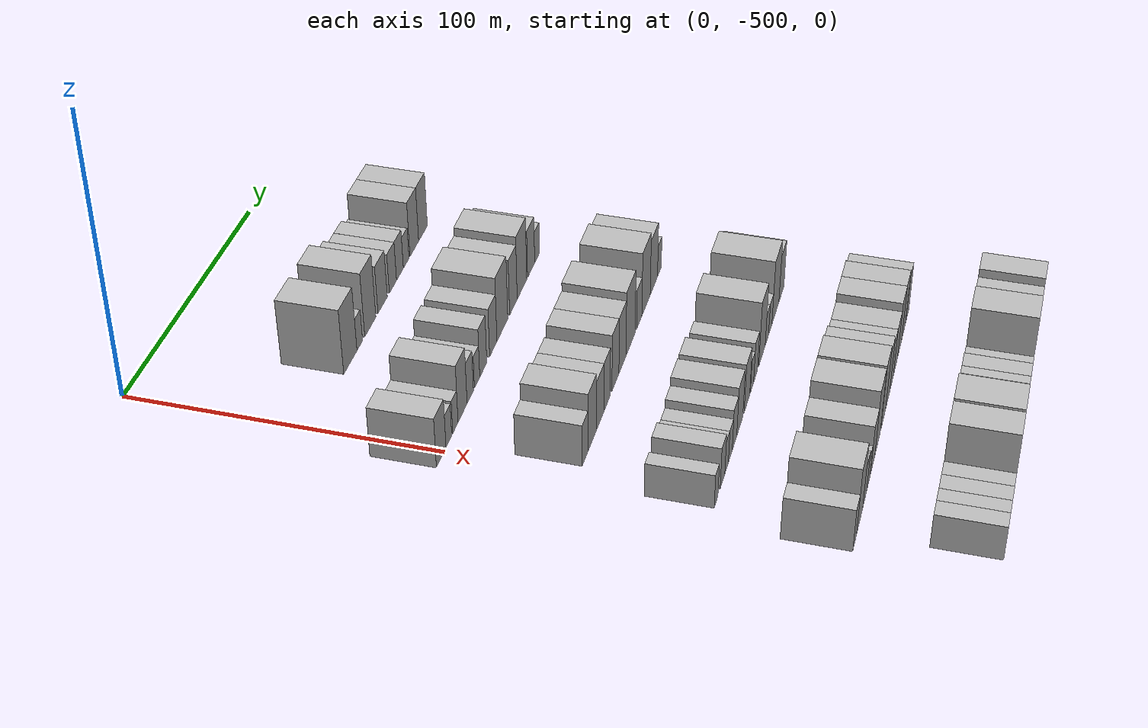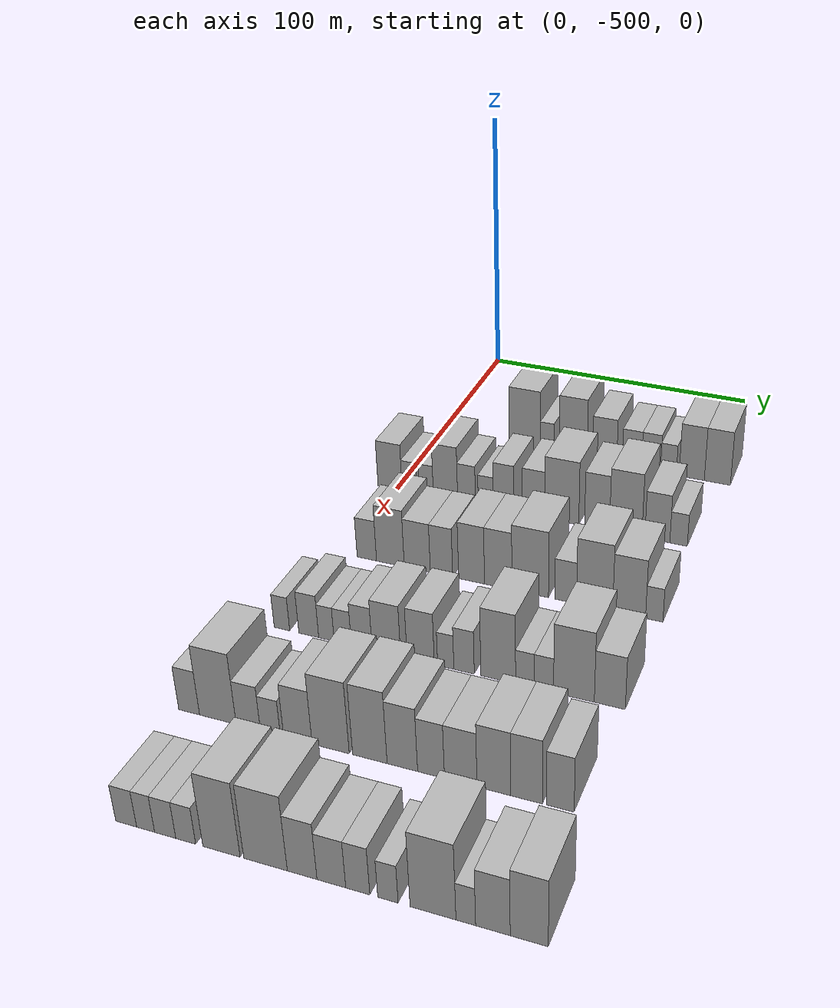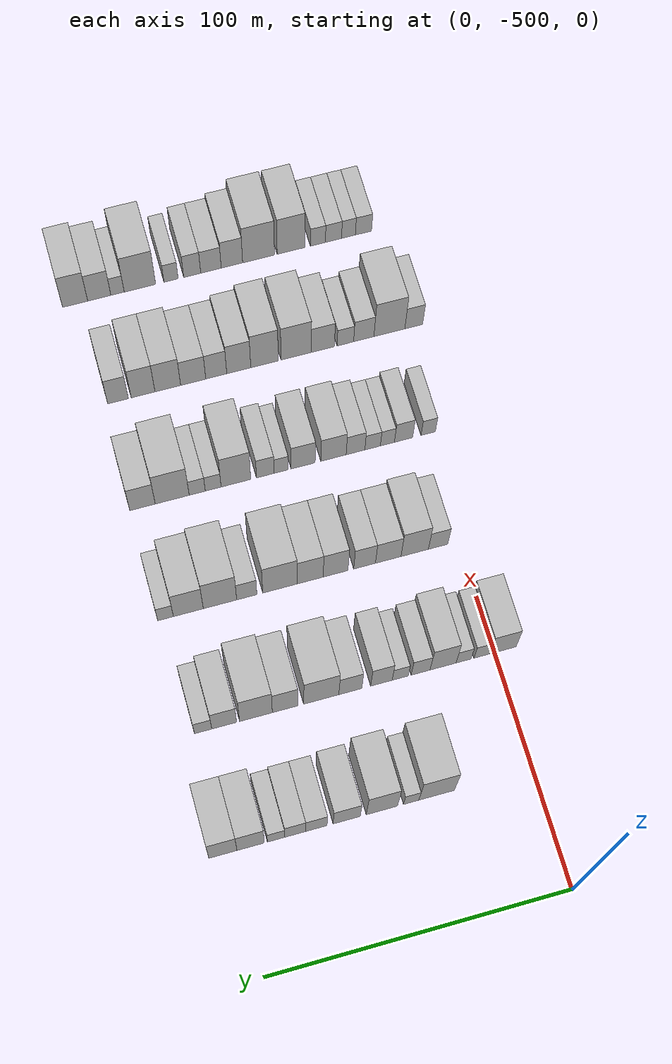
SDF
<sdf version="1.6">
 <world name="default">
  <model name="building_13">
   <static>1</static>
   <pose>50.0000 -467.8218 0 0.000000 0.000000 0.000000</pose>
   <link name="link">
    <pose>0 0 12.00 0 0 0</pose>
    <collision name="collision"><geometry><box><size>20.0000 11.8208 24.0000</size></box></geometry></collision>
    <visual name="visual">
     <cast_shadows>0</cast_shadows>
     <geometry><box><size>20.0000 11.8208 24.0000</size></box></geometry>
     <material>
      <script>
       <uri>model://HANNAS_wall/materials/scripts</uri>
       <uri>model://HANNAS_wall/materials/textures</uri>
       <name>vrc/HANNAS_wall</name>
      </script>
     </material>
    </visual>
   </link>
  </model>
  <model name="building_14">
   <static>1</static>
   <pose>50.0000 -459.3710 0 0.000000 0.000000 0.000000</pose>
   <link name="link">
    <pose>0 0 6.00 0 0 0</pose>
    <collision name="collision"><geometry><box><size>20.0000 5.0807 12.0000</size></box></geometry></collision>
    <visual name="visual">
     <cast_shadows>0</cast_shadows>
     <geometry><box><size>20.0000 5.0807 12.0000</size></box></geometry>
     <material>
      <script>
       <uri>model://HANNAS_wall/materials/scripts</uri>
       <uri>model://HANNAS_wall/materials/textures</uri>
       <name>vrc/HANNAS_wall</name>
      </script>
     </material>
    </visual>
   </link>
  </model>
  <model name="building_15">
   <static>1</static>
   <pose>50.0000 -449.6643 0 0.000000 0.000000 0.000000</pose>
   <link name="link">
    <pose>0 0 12.00 0 0 0</pose>
    <collision name="collision"><geometry><box><size>20.0000 10.3328 24.0000</size></box></geometry></collision>
    <visual name="visual">
     <cast_shadows>0</cast_shadows>
     <geometry><box><size>20.0000 10.3328 24.0000</size></box></geometry>
     <material>
      <script>
       <uri>model://HANNAS_wall/materials/scripts</uri>
       <uri>model://HANNAS_wall/materials/textures</uri>
       <name>vrc/HANNAS_wall</name>
      </script>
     </material>
    </visual>
   </link>
  </model>
  <model name="building_16">
   <static>1</static>
   <pose>50.0000 -438.0300 0 0.000000 0.000000 0.000000</pose>
   <link name="link">
    <pose>0 0 9.00 0 0 0</pose>
    <collision name="collision"><geometry><box><size>20.0000 8.9358 18.0000</size></box></geometry></collision>
    <visual name="visual">
     <cast_shadows>0</cast_shadows>
     <geometry><box><size>20.0000 8.9358 18.0000</size></box></geometry>
     <material>
      <script>
       <uri>model://HANNAS_wall/materials/scripts</uri>
       <uri>model://HANNAS_wall/materials/textures</uri>
       <name>vrc/HANNAS_wall</name>
      </script>
     </material>
    </visual>
   </link>
  </model>
  <model name="building_17">
   <static>1</static>
   <pose>50.0000 -428.0484 0 0.000000 0.000000 0.000000</pose>
   <link name="link">
    <pose>0 0 7.50 0 0 0</pose>
    <collision name="collision"><geometry><box><size>20.0000 7.0274 15.0000</size></box></geometry></collision>
    <visual name="visual">
     <cast_shadows>0</cast_shadows>
     <geometry><box><size>20.0000 7.0274 15.0000</size></box></geometry>
     <material>
      <script>
       <uri>model://HANNAS_wall/materials/scripts</uri>
       <uri>model://HANNAS_wall/materials/textures</uri>
       <name>vrc/HANNAS_wall</name>
      </script>
     </material>
    </visual>
   </link>
  </model>
  <model name="building_18">
   <static>1</static>
   <pose>50.0000 -421.1219 0 0.000000 0.000000 0.000000</pose>
   <link name="link">
    <pose>0 0 7.50 0 0 0</pose>
    <collision name="collision"><geometry><box><size>20.0000 6.8255 15.0000</size></box></geometry></collision>
    <visual name="visual">
     <cast_shadows>0</cast_shadows>
     <geometry><box><size>20.0000 6.8255 15.0000</size></box></geometry>
     <material>
      <script>
       <uri>model://HANNAS_wall/materials/scripts</uri>
       <uri>model://HANNAS_wall/materials/textures</uri>
       <name>vrc/HANNAS_wall</name>
      </script>
     </material>
    </visual>
   </link>
  </model>
  <model name="building_19">
   <static>1</static>
   <pose>50.0000 -414.8773 0 0.000000 0.000000 0.000000</pose>
   <link name="link">
    <pose>0 0 6.00 0 0 0</pose>
    <collision name="collision"><geometry><box><size>20.0000 5.6638 12.0000</size></box></geometry></collision>
    <visual name="visual">
     <cast_shadows>0</cast_shadows>
     <geometry><box><size>20.0000 5.6638 12.0000</size></box></geometry>
     <material>
      <script>
       <uri>model://HANNAS_wall/materials/scripts</uri>
       <uri>model://HANNAS_wall/materials/textures</uri>
       <name>vrc/HANNAS_wall</name>
      </script>
     </material>
    </visual>
   </link>
  </model>
  <model name="building_20">
   <static>1</static>
   <pose>50.0000 -406.5833 0 0.000000 0.000000 0.000000</pose>
   <link name="link">
    <pose>0 0 10.50 0 0 0</pose>
    <collision name="collision"><geometry><box><size>20.0000 8.9241 21.0000</size></box></geometry></collision>
    <visual name="visual">
     <cast_shadows>0</cast_shadows>
     <geometry><box><size>20.0000 8.9241 21.0000</size></box></geometry>
     <material>
      <script>
       <uri>model://HANNAS_wall/materials/scripts</uri>
       <uri>model://HANNAS_wall/materials/textures</uri>
       <name>vrc/HANNAS_wall</name>
      </script>
     </material>
    </visual>
   </link>
  </model>
  <model name="building_21">
   <static>1</static>
   <pose>50.0000 -397.5467 0 0.000000 0.000000 0.000000</pose>
   <link name="link">
    <pose>0 0 10.50 0 0 0</pose>
    <collision name="collision"><geometry><box><size>20.0000 9.1492 21.0000</size></box></geometry></collision>
    <visual name="visual">
     <cast_shadows>0</cast_shadows>
     <geometry><box><size>20.0000 9.1492 21.0000</size></box></geometry>
     <material>
      <script>
       <uri>model://HANNAS_wall/materials/scripts</uri>
       <uri>model://HANNAS_wall/materials/textures</uri>
       <name>vrc/HANNAS_wall</name>
      </script>
     </material>
    </visual>
   </link>
  </model>
  <model name="building_155">
   <static>1</static>
   <pose>90.0000 -502.7356 0 0.000000 0.000000 0.000000</pose>
   <link name="link">
    <pose>0 0 9.00 0 0 0</pose>
    <collision name="collision"><geometry><box><size>20.0000 8.9766 18.0000</size></box></geometry></collision>
    <visual name="visual">
     <cast_shadows>0</cast_shadows>
     <geometry><box><size>20.0000 8.9766 18.0000</size></box></geometry>
     <material>
      <script>
       <uri>model://HANNAS_wall/materials/scripts</uri>
       <uri>model://HANNAS_wall/materials/textures</uri>
       <name>vrc/HANNAS_wall</name>
      </script>
     </material>
    </visual>
   </link>
  </model>
  <model name="building_156">
   <static>1</static>
   <pose>90.0000 -495.5175 0 0.000000 0.000000 0.000000</pose>
   <link name="link">
    <pose>0 0 6.00 0 0 0</pose>
    <collision name="collision"><geometry><box><size>20.0000 5.4596 12.0000</size></box></geometry></collision>
    <visual name="visual">
     <cast_shadows>0</cast_shadows>
     <geometry><box><size>20.0000 5.4596 12.0000</size></box></geometry>
     <material>
      <script>
       <uri>model://HANNAS_wall/materials/scripts</uri>
       <uri>model://HANNAS_wall/materials/textures</uri>
       <name>vrc/HANNAS_wall</name>
      </script>
     </material>
    </visual>
   </link>
  </model>
  <model name="building_157">
   <static>1</static>
   <pose>90.0000 -489.2278 0 0.000000 0.000000 0.000000</pose>
   <link name="link">
    <pose>0 0 6.00 0 0 0</pose>
    <collision name="collision"><geometry><box><size>20.0000 5.1197 12.0000</size></box></geometry></collision>
    <visual name="visual">
     <cast_shadows>0</cast_shadows>
     <geometry><box><size>20.0000 5.1197 12.0000</size></box></geometry>
     <material>
      <script>
       <uri>model://HANNAS_wall/materials/scripts</uri>
       <uri>model://HANNAS_wall/materials/textures</uri>
       <name>vrc/HANNAS_wall</name>
      </script>
     </material>
    </visual>
   </link>
  </model>
  <model name="building_158">
   <static>1</static>
   <pose>90.0000 -482.2254 0 0.000000 0.000000 0.000000</pose>
   <link name="link">
    <pose>0 0 10.50 0 0 0</pose>
    <collision name="collision"><geometry><box><size>20.0000 8.8852 21.0000</size></box></geometry></collision>
    <visual name="visual">
     <cast_shadows>0</cast_shadows>
     <geometry><box><size>20.0000 8.8852 21.0000</size></box></geometry>
     <material>
      <script>
       <uri>model://HANNAS_wall/materials/scripts</uri>
       <uri>model://HANNAS_wall/materials/textures</uri>
       <name>vrc/HANNAS_wall</name>
      </script>
     </material>
    </visual>
   </link>
  </model>
  <model name="building_159">
   <static>1</static>
   <pose>90.0000 -474.5796 0 0.000000 0.000000 0.000000</pose>
   <link name="link">
    <pose>0 0 7.50 0 0 0</pose>
    <collision name="collision"><geometry><box><size>20.0000 6.4064 15.0000</size></box></geometry></collision>
    <visual name="visual">
     <cast_shadows>0</cast_shadows>
     <geometry><box><size>20.0000 6.4064 15.0000</size></box></geometry>
     <material>
      <script>
       <uri>model://HANNAS_wall/materials/scripts</uri>
       <uri>model://HANNAS_wall/materials/textures</uri>
       <name>vrc/HANNAS_wall</name>
      </script>
     </material>
    </visual>
   </link>
  </model>
  <model name="building_160">
   <static>1</static>
   <pose>90.0000 -467.6576 0 0.000000 0.000000 0.000000</pose>
   <link name="link">
    <pose>0 0 6.00 0 0 0</pose>
    <collision name="collision"><geometry><box><size>20.0000 5.4376 12.0000</size></box></geometry></collision>
    <visual name="visual">
     <cast_shadows>0</cast_shadows>
     <geometry><box><size>20.0000 5.4376 12.0000</size></box></geometry>
     <material>
      <script>
       <uri>model://HANNAS_wall/materials/scripts</uri>
       <uri>model://HANNAS_wall/materials/textures</uri>
       <name>vrc/HANNAS_wall</name>
      </script>
     </material>
    </visual>
   </link>
  </model>
  <model name="building_161">
   <static>1</static>
   <pose>90.0000 -461.2988 0 0.000000 0.000000 0.000000</pose>
   <link name="link">
    <pose>0 0 9.00 0 0 0</pose>
    <collision name="collision"><geometry><box><size>20.0000 7.2801 18.0000</size></box></geometry></collision>
    <visual name="visual">
     <cast_shadows>0</cast_shadows>
     <geometry><box><size>20.0000 7.2801 18.0000</size></box></geometry>
     <material>
      <script>
       <uri>model://HANNAS_wall/materials/scripts</uri>
       <uri>model://HANNAS_wall/materials/textures</uri>
       <name>vrc/HANNAS_wall</name>
      </script>
     </material>
    </visual>
   </link>
  </model>
  <model name="building_162">
   <static>1</static>
   <pose>90.0000 -450.7785 0 0.000000 0.000000 0.000000</pose>
   <link name="link">
    <pose>0 0 9.00 0 0 0</pose>
    <collision name="collision"><geometry><box><size>20.0000 7.7603 18.0000</size></box></geometry></collision>
    <visual name="visual">
     <cast_shadows>0</cast_shadows>
     <geometry><box><size>20.0000 7.7603 18.0000</size></box></geometry>
     <material>
      <script>
       <uri>model://HANNAS_wall/materials/scripts</uri>
       <uri>model://HANNAS_wall/materials/textures</uri>
       <name>vrc/HANNAS_wall</name>
      </script>
     </material>
    </visual>
   </link>
  </model>
  <model name="building_163">
   <static>1</static>
   <pose>90.0000 -440.9800 0 0.000000 0.000000 0.000000</pose>
   <link name="link">
    <pose>0 0 12.00 0 0 0</pose>
    <collision name="collision"><geometry><box><size>20.0000 11.8367 24.0000</size></box></geometry></collision>
    <visual name="visual">
     <cast_shadows>0</cast_shadows>
     <geometry><box><size>20.0000 11.8367 24.0000</size></box></geometry>
     <material>
      <script>
       <uri>model://HANNAS_wall/materials/scripts</uri>
       <uri>model://HANNAS_wall/materials/textures</uri>
       <name>vrc/HANNAS_wall</name>
      </script>
     </material>
    </visual>
   </link>
  </model>
  <model name="building_164">
   <static>1</static>
   <pose>90.0000 -428.8132 0 0.000000 0.000000 0.000000</pose>
   <link name="link">
    <pose>0 0 10.50 0 0 0</pose>
    <collision name="collision"><geometry><box><size>20.0000 8.4970 21.0000</size></box></geometry></collision>
    <visual name="visual">
     <cast_shadows>0</cast_shadows>
     <geometry><box><size>20.0000 8.4970 21.0000</size></box></geometry>
     <material>
      <script>
       <uri>model://HANNAS_wall/materials/scripts</uri>
       <uri>model://HANNAS_wall/materials/textures</uri>
       <name>vrc/HANNAS_wall</name>
      </script>
     </material>
    </visual>
   </link>
  </model>
  <model name="building_165">
   <static>1</static>
   <pose>90.0000 -419.1036 0 0.000000 0.000000 0.000000</pose>
   <link name="link">
    <pose>0 0 12.00 0 0 0</pose>
    <collision name="collision"><geometry><box><size>20.0000 10.9220 24.0000</size></box></geometry></collision>
    <visual name="visual">
     <cast_shadows>0</cast_shadows>
     <geometry><box><size>20.0000 10.9220 24.0000</size></box></geometry>
     <material>
      <script>
       <uri>model://HANNAS_wall/materials/scripts</uri>
       <uri>model://HANNAS_wall/materials/textures</uri>
       <name>vrc/HANNAS_wall</name>
      </script>
     </material>
    </visual>
   </link>
  </model>
  <model name="building_166">
   <static>1</static>
   <pose>90.0000 -408.4933 0 0.000000 0.000000 0.000000</pose>
   <link name="link">
    <pose>0 0 9.00 0 0 0</pose>
    <collision name="collision"><geometry><box><size>20.0000 8.2987 18.0000</size></box></geometry></collision>
    <visual name="visual">
     <cast_shadows>0</cast_shadows>
     <geometry><box><size>20.0000 8.2987 18.0000</size></box></geometry>
     <material>
      <script>
       <uri>model://HANNAS_wall/materials/scripts</uri>
       <uri>model://HANNAS_wall/materials/textures</uri>
       <name>vrc/HANNAS_wall</name>
      </script>
     </material>
    </visual>
   </link>
  </model>
  <model name="building_167">
   <static>1</static>
   <pose>90.0000 -401.4646 0 0.000000 0.000000 0.000000</pose>
   <link name="link">
    <pose>0 0 6.00 0 0 0</pose>
    <collision name="collision"><geometry><box><size>20.0000 5.7587 12.0000</size></box></geometry></collision>
    <visual name="visual">
     <cast_shadows>0</cast_shadows>
     <geometry><box><size>20.0000 5.7587 12.0000</size></box></geometry>
     <material>
      <script>
       <uri>model://HANNAS_wall/materials/scripts</uri>
       <uri>model://HANNAS_wall/materials/textures</uri>
       <name>vrc/HANNAS_wall</name>
      </script>
     </material>
    </visual>
   </link>
  </model>
  <model name="building_286">
   <static>1</static>
   <pose>130.0000 -492.7779 0 0.000000 0.000000 0.000000</pose>
   <link name="link">
    <pose>0 0 7.50 0 0 0</pose>
    <collision name="collision"><geometry><box><size>20.0000 6.7325 15.0000</size></box></geometry></collision>
    <visual name="visual">
     <cast_shadows>0</cast_shadows>
     <geometry><box><size>20.0000 6.7325 15.0000</size></box></geometry>
     <material>
      <script>
       <uri>model://HANNAS_wall/materials/scripts</uri>
       <uri>model://HANNAS_wall/materials/textures</uri>
       <name>vrc/HANNAS_wall</name>
      </script>
     </material>
    </visual>
   </link>
  </model>
  <model name="building_287">
   <static>1</static>
   <pose>130.0000 -484.6358 0 0.000000 0.000000 0.000000</pose>
   <link name="link">
    <pose>0 0 10.50 0 0 0</pose>
    <collision name="collision"><geometry><box><size>20.0000 9.5515 21.0000</size></box></geometry></collision>
    <visual name="visual">
     <cast_shadows>0</cast_shadows>
     <geometry><box><size>20.0000 9.5515 21.0000</size></box></geometry>
     <material>
      <script>
       <uri>model://HANNAS_wall/materials/scripts</uri>
       <uri>model://HANNAS_wall/materials/textures</uri>
       <name>vrc/HANNAS_wall</name>
      </script>
     </material>
    </visual>
   </link>
  </model>
  <model name="building_288">
   <static>1</static>
   <pose>130.0000 -475.4337 0 0.000000 0.000000 0.000000</pose>
   <link name="link">
    <pose>0 0 9.00 0 0 0</pose>
    <collision name="collision"><geometry><box><size>20.0000 8.8527 18.0000</size></box></geometry></collision>
    <visual name="visual">
     <cast_shadows>0</cast_shadows>
     <geometry><box><size>20.0000 8.8527 18.0000</size></box></geometry>
     <material>
      <script>
       <uri>model://HANNAS_wall/materials/scripts</uri>
       <uri>model://HANNAS_wall/materials/textures</uri>
       <name>vrc/HANNAS_wall</name>
      </script>
     </material>
    </visual>
   </link>
  </model>
  <model name="building_289">
   <static>1</static>
   <pose>130.0000 -467.2524 0 0.000000 0.000000 0.000000</pose>
   <link name="link">
    <pose>0 0 9.00 0 0 0</pose>
    <collision name="collision"><geometry><box><size>20.0000 7.5099 18.0000</size></box></geometry></collision>
    <visual name="visual">
     <cast_shadows>0</cast_shadows>
     <geometry><box><size>20.0000 7.5099 18.0000</size></box></geometry>
     <material>
      <script>
       <uri>model://HANNAS_wall/materials/scripts</uri>
       <uri>model://HANNAS_wall/materials/textures</uri>
       <name>vrc/HANNAS_wall</name>
      </script>
     </material>
    </visual>
   </link>
  </model>
  <model name="building_290">
   <static>1</static>
   <pose>130.0000 -457.2176 0 0.000000 0.000000 0.000000</pose>
   <link name="link">
    <pose>0 0 10.50 0 0 0</pose>
    <collision name="collision"><geometry><box><size>20.0000 8.5598 21.0000</size></box></geometry></collision>
    <visual name="visual">
     <cast_shadows>0</cast_shadows>
     <geometry><box><size>20.0000 8.5598 21.0000</size></box></geometry>
     <material>
      <script>
       <uri>model://HANNAS_wall/materials/scripts</uri>
       <uri>model://HANNAS_wall/materials/textures</uri>
       <name>vrc/HANNAS_wall</name>
      </script>
     </material>
    </visual>
   </link>
  </model>
  <model name="building_291">
   <static>1</static>
   <pose>130.0000 -448.4546 0 0.000000 0.000000 0.000000</pose>
   <link name="link">
    <pose>0 0 10.50 0 0 0</pose>
    <collision name="collision"><geometry><box><size>20.0000 8.9662 21.0000</size></box></geometry></collision>
    <visual name="visual">
     <cast_shadows>0</cast_shadows>
     <geometry><box><size>20.0000 8.9662 21.0000</size></box></geometry>
     <material>
      <script>
       <uri>model://HANNAS_wall/materials/scripts</uri>
       <uri>model://HANNAS_wall/materials/textures</uri>
       <name>vrc/HANNAS_wall</name>
      </script>
     </material>
    </visual>
   </link>
  </model>
  <model name="building_292">
   <static>1</static>
   <pose>130.0000 -438.0841 0 0.000000 0.000000 0.000000</pose>
   <link name="link">
    <pose>0 0 12.00 0 0 0</pose>
    <collision name="collision"><geometry><box><size>20.0000 11.7747 24.0000</size></box></geometry></collision>
    <visual name="visual">
     <cast_shadows>0</cast_shadows>
     <geometry><box><size>20.0000 11.7747 24.0000</size></box></geometry>
     <material>
      <script>
       <uri>model://HANNAS_wall/materials/scripts</uri>
       <uri>model://HANNAS_wall/materials/textures</uri>
       <name>vrc/HANNAS_wall</name>
      </script>
     </material>
    </visual>
   </link>
  </model>
  <model name="building_293">
   <static>1</static>
   <pose>130.0000 -426.7488 0 0.000000 0.000000 0.000000</pose>
   <link name="link">
    <pose>0 0 7.50 0 0 0</pose>
    <collision name="collision"><geometry><box><size>20.0000 6.8958 15.0000</size></box></geometry></collision>
    <visual name="visual">
     <cast_shadows>0</cast_shadows>
     <geometry><box><size>20.0000 6.8958 15.0000</size></box></geometry>
     <material>
      <script>
       <uri>model://HANNAS_wall/materials/scripts</uri>
       <uri>model://HANNAS_wall/materials/textures</uri>
       <name>vrc/HANNAS_wall</name>
      </script>
     </material>
    </visual>
   </link>
  </model>
  <model name="building_294">
   <static>1</static>
   <pose>130.0000 -417.6148 0 0.000000 0.000000 0.000000</pose>
   <link name="link">
    <pose>0 0 12.00 0 0 0</pose>
    <collision name="collision"><geometry><box><size>20.0000 11.3723 24.0000</size></box></geometry></collision>
    <visual name="visual">
     <cast_shadows>0</cast_shadows>
     <geometry><box><size>20.0000 11.3723 24.0000</size></box></geometry>
     <material>
      <script>
       <uri>model://HANNAS_wall/materials/scripts</uri>
       <uri>model://HANNAS_wall/materials/textures</uri>
       <name>vrc/HANNAS_wall</name>
      </script>
     </material>
    </visual>
   </link>
  </model>
  <model name="building_295">
   <static>1</static>
   <pose>130.0000 -406.8437 0 0.000000 0.000000 0.000000</pose>
   <link name="link">
    <pose>0 0 10.50 0 0 0</pose>
    <collision name="collision"><geometry><box><size>20.0000 10.1698 21.0000</size></box></geometry></collision>
    <visual name="visual">
     <cast_shadows>0</cast_shadows>
     <geometry><box><size>20.0000 10.1698 21.0000</size></box></geometry>
     <material>
      <script>
       <uri>model://HANNAS_wall/materials/scripts</uri>
       <uri>model://HANNAS_wall/materials/textures</uri>
       <name>vrc/HANNAS_wall</name>
      </script>
     </material>
    </visual>
   </link>
  </model>
  <model name="building_296">
   <static>1</static>
   <pose>130.0000 -399.0955 0 0.000000 0.000000 0.000000</pose>
   <link name="link">
    <pose>0 0 6.00 0 0 0</pose>
    <collision name="collision"><geometry><box><size>20.0000 5.3266 12.0000</size></box></geometry></collision>
    <visual name="visual">
     <cast_shadows>0</cast_shadows>
     <geometry><box><size>20.0000 5.3266 12.0000</size></box></geometry>
     <material>
      <script>
       <uri>model://HANNAS_wall/materials/scripts</uri>
       <uri>model://HANNAS_wall/materials/textures</uri>
       <name>vrc/HANNAS_wall</name>
      </script>
     </material>
    </visual>
   </link>
  </model>
  <model name="building_423">
   <static>1</static>
   <pose>170.0000 -501.4994 0 0.000000 0.000000 0.000000</pose>
   <link name="link">
    <pose>0 0 6.00 0 0 0</pose>
    <collision name="collision"><geometry><box><size>20.0000 5.0945 12.0000</size></box></geometry></collision>
    <visual name="visual">
     <cast_shadows>0</cast_shadows>
     <geometry><box><size>20.0000 5.0945 12.0000</size></box></geometry>
     <material>
      <script>
       <uri>model://HANNAS_wall/materials/scripts</uri>
       <uri>model://HANNAS_wall/materials/textures</uri>
       <name>vrc/HANNAS_wall</name>
      </script>
     </material>
    </visual>
   </link>
  </model>
  <model name="building_424">
   <static>1</static>
   <pose>170.0000 -492.7236 0 0.000000 0.000000 0.000000</pose>
   <link name="link">
    <pose>0 0 7.50 0 0 0</pose>
    <collision name="collision"><geometry><box><size>20.0000 6.4571 15.0000</size></box></geometry></collision>
    <visual name="visual">
     <cast_shadows>0</cast_shadows>
     <geometry><box><size>20.0000 6.4571 15.0000</size></box></geometry>
     <material>
      <script>
       <uri>model://HANNAS_wall/materials/scripts</uri>
       <uri>model://HANNAS_wall/materials/textures</uri>
       <name>vrc/HANNAS_wall</name>
      </script>
     </material>
    </visual>
   </link>
  </model>
  <model name="building_425">
   <static>1</static>
   <pose>170.0000 -487.0002 0 0.000000 0.000000 0.000000</pose>
   <link name="link">
    <pose>0 0 6.00 0 0 0</pose>
    <collision name="collision"><geometry><box><size>20.0000 4.9897 12.0000</size></box></geometry></collision>
    <visual name="visual">
     <cast_shadows>0</cast_shadows>
     <geometry><box><size>20.0000 4.9897 12.0000</size></box></geometry>
     <material>
      <script>
       <uri>model://HANNAS_wall/materials/scripts</uri>
       <uri>model://HANNAS_wall/materials/textures</uri>
       <name>vrc/HANNAS_wall</name>
      </script>
     </material>
    </visual>
   </link>
  </model>
  <model name="building_426">
   <static>1</static>
   <pose>170.0000 -481.7513 0 0.000000 0.000000 0.000000</pose>
   <link name="link">
    <pose>0 0 6.00 0 0 0</pose>
    <collision name="collision"><geometry><box><size>20.0000 5.5082 12.0000</size></box></geometry></collision>
    <visual name="visual">
     <cast_shadows>0</cast_shadows>
     <geometry><box><size>20.0000 5.5082 12.0000</size></box></geometry>
     <material>
      <script>
       <uri>model://HANNAS_wall/materials/scripts</uri>
       <uri>model://HANNAS_wall/materials/textures</uri>
       <name>vrc/HANNAS_wall</name>
      </script>
     </material>
    </visual>
   </link>
  </model>
  <model name="building_427">
   <static>1</static>
   <pose>170.0000 -475.6947 0 0.000000 0.000000 0.000000</pose>
   <link name="link">
    <pose>0 0 7.50 0 0 0</pose>
    <collision name="collision"><geometry><box><size>20.0000 6.6049 15.0000</size></box></geometry></collision>
    <visual name="visual">
     <cast_shadows>0</cast_shadows>
     <geometry><box><size>20.0000 6.6049 15.0000</size></box></geometry>
     <material>
      <script>
       <uri>model://HANNAS_wall/materials/scripts</uri>
       <uri>model://HANNAS_wall/materials/textures</uri>
       <name>vrc/HANNAS_wall</name>
      </script>
     </material>
    </visual>
   </link>
  </model>
  <model name="building_428">
   <static>1</static>
   <pose>170.0000 -467.9194 0 0.000000 0.000000 0.000000</pose>
   <link name="link">
    <pose>0 0 9.00 0 0 0</pose>
    <collision name="collision"><geometry><box><size>20.0000 8.9458 18.0000</size></box></geometry></collision>
    <visual name="visual">
     <cast_shadows>0</cast_shadows>
     <geometry><box><size>20.0000 8.9458 18.0000</size></box></geometry>
     <material>
      <script>
       <uri>model://HANNAS_wall/materials/scripts</uri>
       <uri>model://HANNAS_wall/materials/textures</uri>
       <name>vrc/HANNAS_wall</name>
      </script>
     </material>
    </visual>
   </link>
  </model>
  <model name="building_429">
   <static>1</static>
   <pose>170.0000 -457.2220 0 0.000000 0.000000 0.000000</pose>
   <link name="link">
    <pose>0 0 9.00 0 0 0</pose>
    <collision name="collision"><geometry><box><size>20.0000 8.4489 18.0000</size></box></geometry></collision>
    <visual name="visual">
     <cast_shadows>0</cast_shadows>
     <geometry><box><size>20.0000 8.4489 18.0000</size></box></geometry>
     <material>
      <script>
       <uri>model://HANNAS_wall/materials/scripts</uri>
       <uri>model://HANNAS_wall/materials/textures</uri>
       <name>vrc/HANNAS_wall</name>
      </script>
     </material>
    </visual>
   </link>
  </model>
  <model name="building_430">
   <static>1</static>
   <pose>170.0000 -449.5183 0 0.000000 0.000000 0.000000</pose>
   <link name="link">
    <pose>0 0 6.00 0 0 0</pose>
    <collision name="collision"><geometry><box><size>20.0000 4.9585 12.0000</size></box></geometry></collision>
    <visual name="visual">
     <cast_shadows>0</cast_shadows>
     <geometry><box><size>20.0000 4.9585 12.0000</size></box></geometry>
     <material>
      <script>
       <uri>model://HANNAS_wall/materials/scripts</uri>
       <uri>model://HANNAS_wall/materials/textures</uri>
       <name>vrc/HANNAS_wall</name>
      </script>
     </material>
    </visual>
   </link>
  </model>
  <model name="building_431">
   <static>1</static>
   <pose>170.0000 -443.9488 0 0.000000 0.000000 0.000000</pose>
   <link name="link">
    <pose>0 0 7.50 0 0 0</pose>
    <collision name="collision"><geometry><box><size>20.0000 6.1805 15.0000</size></box></geometry></collision>
    <visual name="visual">
     <cast_shadows>0</cast_shadows>
     <geometry><box><size>20.0000 6.1805 15.0000</size></box></geometry>
     <material>
      <script>
       <uri>model://HANNAS_wall/materials/scripts</uri>
       <uri>model://HANNAS_wall/materials/textures</uri>
       <name>vrc/HANNAS_wall</name>
      </script>
     </material>
    </visual>
   </link>
  </model>
  <model name="building_432">
   <static>1</static>
   <pose>170.0000 -433.6842 0 0.000000 0.000000 0.000000</pose>
   <link name="link">
    <pose>0 0 12.00 0 0 0</pose>
    <collision name="collision"><geometry><box><size>20.0000 10.3487 24.0000</size></box></geometry></collision>
    <visual name="visual">
     <cast_shadows>0</cast_shadows>
     <geometry><box><size>20.0000 10.3487 24.0000</size></box></geometry>
     <material>
      <script>
       <uri>model://HANNAS_wall/materials/scripts</uri>
       <uri>model://HANNAS_wall/materials/textures</uri>
       <name>vrc/HANNAS_wall</name>
      </script>
     </material>
    </visual>
   </link>
  </model>
  <model name="building_433">
   <static>1</static>
   <pose>170.0000 -425.7482 0 0.000000 0.000000 0.000000</pose>
   <link name="link">
    <pose>0 0 6.00 0 0 0</pose>
    <collision name="collision"><geometry><box><size>20.0000 5.5233 12.0000</size></box></geometry></collision>
    <visual name="visual">
     <cast_shadows>0</cast_shadows>
     <geometry><box><size>20.0000 5.5233 12.0000</size></box></geometry>
     <material>
      <script>
       <uri>model://HANNAS_wall/materials/scripts</uri>
       <uri>model://HANNAS_wall/materials/textures</uri>
       <name>vrc/HANNAS_wall</name>
      </script>
     </material>
    </visual>
   </link>
  </model>
  <model name="building_434">
   <static>1</static>
   <pose>170.0000 -420.1841 0 0.000000 0.000000 0.000000</pose>
   <link name="link">
    <pose>0 0 6.00 0 0 0</pose>
    <collision name="collision"><geometry><box><size>20.0000 5.6050 12.0000</size></box></geometry></collision>
    <visual name="visual">
     <cast_shadows>0</cast_shadows>
     <geometry><box><size>20.0000 5.6050 12.0000</size></box></geometry>
     <material>
      <script>
       <uri>model://HANNAS_wall/materials/scripts</uri>
       <uri>model://HANNAS_wall/materials/textures</uri>
       <name>vrc/HANNAS_wall</name>
      </script>
     </material>
    </visual>
   </link>
  </model>
  <model name="building_435">
   <static>1</static>
   <pose>170.0000 -411.4951 0 0.000000 0.000000 0.000000</pose>
   <link name="link">
    <pose>0 0 12.00 0 0 0</pose>
    <collision name="collision"><geometry><box><size>20.0000 11.7731 24.0000</size></box></geometry></collision>
    <visual name="visual">
     <cast_shadows>0</cast_shadows>
     <geometry><box><size>20.0000 11.7731 24.0000</size></box></geometry>
     <material>
      <script>
       <uri>model://HANNAS_wall/materials/scripts</uri>
       <uri>model://HANNAS_wall/materials/textures</uri>
       <name>vrc/HANNAS_wall</name>
      </script>
     </material>
    </visual>
   </link>
  </model>
  <model name="building_436">
   <static>1</static>
   <pose>170.0000 -401.1962 0 0.000000 0.000000 0.000000</pose>
   <link name="link">
    <pose>0 0 9.00 0 0 0</pose>
    <collision name="collision"><geometry><box><size>20.0000 8.8247 18.0000</size></box></geometry></collision>
    <visual name="visual">
     <cast_shadows>0</cast_shadows>
     <geometry><box><size>20.0000 8.8247 18.0000</size></box></geometry>
     <material>
      <script>
       <uri>model://HANNAS_wall/materials/scripts</uri>
       <uri>model://HANNAS_wall/materials/textures</uri>
       <name>vrc/HANNAS_wall</name>
      </script>
     </material>
    </visual>
   </link>
  </model>
  <model name="building_554">
   <static>1</static>
   <pose>210.0000 -508.4070 0 0.000000 0.000000 0.000000</pose>
   <link name="link">
    <pose>0 0 7.50 0 0 0</pose>
    <collision name="collision"><geometry><box><size>20.0000 6.4763 15.0000</size></box></geometry></collision>
    <visual name="visual">
     <cast_shadows>0</cast_shadows>
     <geometry><box><size>20.0000 6.4763 15.0000</size></box></geometry>
     <material>
      <script>
       <uri>model://HANNAS_wall/materials/scripts</uri>
       <uri>model://HANNAS_wall/materials/textures</uri>
       <name>vrc/HANNAS_wall</name>
      </script>
     </material>
    </visual>
   </link>
  </model>
  <model name="building_555">
   <static>1</static>
   <pose>210.0000 -499.5474 0 0.000000 0.000000 0.000000</pose>
   <link name="link">
    <pose>0 0 12.00 0 0 0</pose>
    <collision name="collision"><geometry><box><size>20.0000 11.2429 24.0000</size></box></geometry></collision>
    <visual name="visual">
     <cast_shadows>0</cast_shadows>
     <geometry><box><size>20.0000 11.2429 24.0000</size></box></geometry>
     <material>
      <script>
       <uri>model://HANNAS_wall/materials/scripts</uri>
       <uri>model://HANNAS_wall/materials/textures</uri>
       <name>vrc/HANNAS_wall</name>
      </script>
     </material>
    </visual>
   </link>
  </model>
  <model name="building_556">
   <static>1</static>
   <pose>210.0000 -490.2642 0 0.000000 0.000000 0.000000</pose>
   <link name="link">
    <pose>0 0 7.50 0 0 0</pose>
    <collision name="collision"><geometry><box><size>20.0000 7.3235 15.0000</size></box></geometry></collision>
    <visual name="visual">
     <cast_shadows>0</cast_shadows>
     <geometry><box><size>20.0000 7.3235 15.0000</size></box></geometry>
     <material>
      <script>
       <uri>model://HANNAS_wall/materials/scripts</uri>
       <uri>model://HANNAS_wall/materials/textures</uri>
       <name>vrc/HANNAS_wall</name>
      </script>
     </material>
    </visual>
   </link>
  </model>
  <model name="building_557">
   <static>1</static>
   <pose>210.0000 -483.6148 0 0.000000 0.000000 0.000000</pose>
   <link name="link">
    <pose>0 0 6.00 0 0 0</pose>
    <collision name="collision"><geometry><box><size>20.0000 5.9753 12.0000</size></box></geometry></collision>
    <visual name="visual">
     <cast_shadows>0</cast_shadows>
     <geometry><box><size>20.0000 5.9753 12.0000</size></box></geometry>
     <material>
      <script>
       <uri>model://HANNAS_wall/materials/scripts</uri>
       <uri>model://HANNAS_wall/materials/textures</uri>
       <name>vrc/HANNAS_wall</name>
      </script>
     </material>
    </visual>
   </link>
  </model>
  <model name="building_558">
   <static>1</static>
   <pose>210.0000 -475.4366 0 0.000000 0.000000 0.000000</pose>
   <link name="link">
    <pose>0 0 9.00 0 0 0</pose>
    <collision name="collision"><geometry><box><size>20.0000 8.3810 18.0000</size></box></geometry></collision>
    <visual name="visual">
     <cast_shadows>0</cast_shadows>
     <geometry><box><size>20.0000 8.3810 18.0000</size></box></geometry>
     <material>
      <script>
       <uri>model://HANNAS_wall/materials/scripts</uri>
       <uri>model://HANNAS_wall/materials/textures</uri>
       <name>vrc/HANNAS_wall</name>
      </script>
     </material>
    </visual>
   </link>
  </model>
  <model name="building_559">
   <static>1</static>
   <pose>210.0000 -465.8450 0 0.000000 0.000000 0.000000</pose>
   <link name="link">
    <pose>0 0 12.00 0 0 0</pose>
    <collision name="collision"><geometry><box><size>20.0000 10.8024 24.0000</size></box></geometry></collision>
    <visual name="visual">
     <cast_shadows>0</cast_shadows>
     <geometry><box><size>20.0000 10.8024 24.0000</size></box></geometry>
     <material>
      <script>
       <uri>model://HANNAS_wall/materials/scripts</uri>
       <uri>model://HANNAS_wall/materials/textures</uri>
       <name>vrc/HANNAS_wall</name>
      </script>
     </material>
    </visual>
   </link>
  </model>
  <model name="building_560">
   <static>1</static>
   <pose>210.0000 -454.5256 0 0.000000 0.000000 0.000000</pose>
   <link name="link">
    <pose>0 0 12.00 0 0 0</pose>
    <collision name="collision"><geometry><box><size>20.0000 9.8364 24.0000</size></box></geometry></collision>
    <visual name="visual">
     <cast_shadows>0</cast_shadows>
     <geometry><box><size>20.0000 9.8364 24.0000</size></box></geometry>
     <material>
      <script>
       <uri>model://HANNAS_wall/materials/scripts</uri>
       <uri>model://HANNAS_wall/materials/textures</uri>
       <name>vrc/HANNAS_wall</name>
      </script>
     </material>
    </visual>
   </link>
  </model>
  <model name="building_561">
   <static>1</static>
   <pose>210.0000 -445.3177 0 0.000000 0.000000 0.000000</pose>
   <link name="link">
    <pose>0 0 10.50 0 0 0</pose>
    <collision name="collision"><geometry><box><size>20.0000 8.5793 21.0000</size></box></geometry></collision>
    <visual name="visual">
     <cast_shadows>0</cast_shadows>
     <geometry><box><size>20.0000 8.5793 21.0000</size></box></geometry>
     <material>
      <script>
       <uri>model://HANNAS_wall/materials/scripts</uri>
       <uri>model://HANNAS_wall/materials/textures</uri>
       <name>vrc/HANNAS_wall</name>
      </script>
     </material>
    </visual>
   </link>
  </model>
  <model name="building_562">
   <static>1</static>
   <pose>210.0000 -437.2907 0 0.000000 0.000000 0.000000</pose>
   <link name="link">
    <pose>0 0 9.00 0 0 0</pose>
    <collision name="collision"><geometry><box><size>20.0000 7.4747 18.0000</size></box></geometry></collision>
    <visual name="visual">
     <cast_shadows>0</cast_shadows>
     <geometry><box><size>20.0000 7.4747 18.0000</size></box></geometry>
     <material>
      <script>
       <uri>model://HANNAS_wall/materials/scripts</uri>
       <uri>model://HANNAS_wall/materials/textures</uri>
       <name>vrc/HANNAS_wall</name>
      </script>
     </material>
    </visual>
   </link>
  </model>
  <model name="building_563">
   <static>1</static>
   <pose>210.0000 -429.0932 0 0.000000 0.000000 0.000000</pose>
   <link name="link">
    <pose>0 0 9.00 0 0 0</pose>
    <collision name="collision"><geometry><box><size>20.0000 8.9203 18.0000</size></box></geometry></collision>
    <visual name="visual">
     <cast_shadows>0</cast_shadows>
     <geometry><box><size>20.0000 8.9203 18.0000</size></box></geometry>
     <material>
      <script>
       <uri>model://HANNAS_wall/materials/scripts</uri>
       <uri>model://HANNAS_wall/materials/textures</uri>
       <name>vrc/HANNAS_wall</name>
      </script>
     </material>
    </visual>
   </link>
  </model>
  <model name="building_564">
   <static>1</static>
   <pose>210.0000 -420.0701 0 0.000000 0.000000 0.000000</pose>
   <link name="link">
    <pose>0 0 10.50 0 0 0</pose>
    <collision name="collision"><geometry><box><size>20.0000 9.1259 21.0000</size></box></geometry></collision>
    <visual name="visual">
     <cast_shadows>0</cast_shadows>
     <geometry><box><size>20.0000 9.1259 21.0000</size></box></geometry>
     <material>
      <script>
       <uri>model://HANNAS_wall/materials/scripts</uri>
       <uri>model://HANNAS_wall/materials/textures</uri>
       <name>vrc/HANNAS_wall</name>
      </script>
     </material>
    </visual>
   </link>
  </model>
  <model name="building_565">
   <static>1</static>
   <pose>210.0000 -411.3039 0 0.000000 0.000000 0.000000</pose>
   <link name="link">
    <pose>0 0 10.50 0 0 0</pose>
    <collision name="collision"><geometry><box><size>20.0000 8.4066 21.0000</size></box></geometry></collision>
    <visual name="visual">
     <cast_shadows>0</cast_shadows>
     <geometry><box><size>20.0000 8.4066 21.0000</size></box></geometry>
     <material>
      <script>
       <uri>model://HANNAS_wall/materials/scripts</uri>
       <uri>model://HANNAS_wall/materials/textures</uri>
       <name>vrc/HANNAS_wall</name>
      </script>
     </material>
    </visual>
   </link>
  </model>
  <model name="building_566">
   <static>1</static>
   <pose>210.0000 -402.4468 0 0.000000 0.000000 0.000000</pose>
   <link name="link">
    <pose>0 0 9.00 0 0 0</pose>
    <collision name="collision"><geometry><box><size>20.0000 7.3076 18.0000</size></box></geometry></collision>
    <visual name="visual">
     <cast_shadows>0</cast_shadows>
     <geometry><box><size>20.0000 7.3076 18.0000</size></box></geometry>
     <material>
      <script>
       <uri>model://HANNAS_wall/materials/scripts</uri>
       <uri>model://HANNAS_wall/materials/textures</uri>
       <name>vrc/HANNAS_wall</name>
      </script>
     </material>
    </visual>
   </link>
  </model>
  <model name="building_696">
   <static>1</static>
   <pose>250.0000 -501.7793 0 0.000000 0.000000 0.000000</pose>
   <link name="link">
    <pose>0 0 6.00 0 0 0</pose>
    <collision name="collision"><geometry><box><size>20.0000 5.9695 12.0000</size></box></geometry></collision>
    <visual name="visual">
     <cast_shadows>0</cast_shadows>
     <geometry><box><size>20.0000 5.9695 12.0000</size></box></geometry>
     <material>
      <script>
       <uri>model://HANNAS_wall/materials/scripts</uri>
       <uri>model://HANNAS_wall/materials/textures</uri>
       <name>vrc/HANNAS_wall</name>
      </script>
     </material>
    </visual>
   </link>
  </model>
  <model name="building_697">
   <static>1</static>
   <pose>250.0000 -496.2440 0 0.000000 0.000000 0.000000</pose>
   <link name="link">
    <pose>0 0 6.00 0 0 0</pose>
    <collision name="collision"><geometry><box><size>20.0000 5.1009 12.0000</size></box></geometry></collision>
    <visual name="visual">
     <cast_shadows>0</cast_shadows>
     <geometry><box><size>20.0000 5.1009 12.0000</size></box></geometry>
     <material>
      <script>
       <uri>model://HANNAS_wall/materials/scripts</uri>
       <uri>model://HANNAS_wall/materials/textures</uri>
       <name>vrc/HANNAS_wall</name>
      </script>
     </material>
    </visual>
   </link>
  </model>
  <model name="building_698">
   <static>1</static>
   <pose>250.0000 -490.7227 0 0.000000 0.000000 0.000000</pose>
   <link name="link">
    <pose>0 0 6.00 0 0 0</pose>
    <collision name="collision"><geometry><box><size>20.0000 5.9419 12.0000</size></box></geometry></collision>
    <visual name="visual">
     <cast_shadows>0</cast_shadows>
     <geometry><box><size>20.0000 5.9419 12.0000</size></box></geometry>
     <material>
      <script>
       <uri>model://HANNAS_wall/materials/scripts</uri>
       <uri>model://HANNAS_wall/materials/textures</uri>
       <name>vrc/HANNAS_wall</name>
      </script>
     </material>
    </visual>
   </link>
  </model>
  <model name="building_699">
   <static>1</static>
   <pose>250.0000 -484.9835 0 0.000000 0.000000 0.000000</pose>
   <link name="link">
    <pose>0 0 6.00 0 0 0</pose>
    <collision name="collision"><geometry><box><size>20.0000 5.5364 12.0000</size></box></geometry></collision>
    <visual name="visual">
     <cast_shadows>0</cast_shadows>
     <geometry><box><size>20.0000 5.5364 12.0000</size></box></geometry>
     <material>
      <script>
       <uri>model://HANNAS_wall/materials/scripts</uri>
       <uri>model://HANNAS_wall/materials/textures</uri>
       <name>vrc/HANNAS_wall</name>
      </script>
     </material>
    </visual>
   </link>
  </model>
  <model name="building_700">
   <static>1</static>
   <pose>250.0000 -475.1258 0 0.000000 0.000000 0.000000</pose>
   <link name="link">
    <pose>0 0 12.00 0 0 0</pose>
    <collision name="collision"><geometry><box><size>20.0000 10.1790 24.0000</size></box></geometry></collision>
    <visual name="visual">
     <cast_shadows>0</cast_shadows>
     <geometry><box><size>20.0000 10.1790 24.0000</size></box></geometry>
     <material>
      <script>
       <uri>model://HANNAS_wall/materials/scripts</uri>
       <uri>model://HANNAS_wall/materials/textures</uri>
       <name>vrc/HANNAS_wall</name>
      </script>
     </material>
    </visual>
   </link>
  </model>
  <model name="building_701">
   <static>1</static>
   <pose>250.0000 -463.2142 0 0.000000 0.000000 0.000000</pose>
   <link name="link">
    <pose>0 0 12.00 0 0 0</pose>
    <collision name="collision"><geometry><box><size>20.0000 11.6443 24.0000</size></box></geometry></collision>
    <visual name="visual">
     <cast_shadows>0</cast_shadows>
     <geometry><box><size>20.0000 11.6443 24.0000</size></box></geometry>
     <material>
      <script>
       <uri>model://HANNAS_wall/materials/scripts</uri>
       <uri>model://HANNAS_wall/materials/textures</uri>
       <name>vrc/HANNAS_wall</name>
      </script>
     </material>
    </visual>
   </link>
  </model>
  <model name="building_702">
   <static>1</static>
   <pose>250.0000 -453.4841 0 0.000000 0.000000 0.000000</pose>
   <link name="link">
    <pose>0 0 9.00 0 0 0</pose>
    <collision name="collision"><geometry><box><size>20.0000 7.8160 18.0000</size></box></geometry></collision>
    <visual name="visual">
     <cast_shadows>0</cast_shadows>
     <geometry><box><size>20.0000 7.8160 18.0000</size></box></geometry>
     <material>
      <script>
       <uri>model://HANNAS_wall/materials/scripts</uri>
       <uri>model://HANNAS_wall/materials/textures</uri>
       <name>vrc/HANNAS_wall</name>
      </script>
     </material>
    </visual>
   </link>
  </model>
  <model name="building_703">
   <static>1</static>
   <pose>250.0000 -445.8436 0 0.000000 0.000000 0.000000</pose>
   <link name="link">
    <pose>0 0 7.50 0 0 0</pose>
    <collision name="collision"><geometry><box><size>20.0000 7.4651 15.0000</size></box></geometry></collision>
    <visual name="visual">
     <cast_shadows>0</cast_shadows>
     <geometry><box><size>20.0000 7.4651 15.0000</size></box></geometry>
     <material>
      <script>
       <uri>model://HANNAS_wall/materials/scripts</uri>
       <uri>model://HANNAS_wall/materials/textures</uri>
       <name>vrc/HANNAS_wall</name>
      </script>
     </material>
    </visual>
   </link>
  </model>
  <model name="building_704">
   <static>1</static>
   <pose>250.0000 -439.0217 0 0.000000 0.000000 0.000000</pose>
   <link name="link">
    <pose>0 0 7.50 0 0 0</pose>
    <collision name="collision"><geometry><box><size>20.0000 6.1787 15.0000</size></box></geometry></collision>
    <visual name="visual">
     <cast_shadows>0</cast_shadows>
     <geometry><box><size>20.0000 6.1787 15.0000</size></box></geometry>
     <material>
      <script>
       <uri>model://HANNAS_wall/materials/scripts</uri>
       <uri>model://HANNAS_wall/materials/textures</uri>
       <name>vrc/HANNAS_wall</name>
      </script>
     </material>
    </visual>
   </link>
  </model>
  <model name="building_705">
   <static>1</static>
   <pose>250.0000 -431.3516 0 0.000000 0.000000 0.000000</pose>
   <link name="link">
    <pose>0 0 6.00 0 0 0</pose>
    <collision name="collision"><geometry><box><size>20.0000 5.1615 12.0000</size></box></geometry></collision>
    <visual name="visual">
     <cast_shadows>0</cast_shadows>
     <geometry><box><size>20.0000 5.1615 12.0000</size></box></geometry>
     <material>
      <script>
       <uri>model://HANNAS_wall/materials/scripts</uri>
       <uri>model://HANNAS_wall/materials/textures</uri>
       <name>vrc/HANNAS_wall</name>
      </script>
     </material>
    </visual>
   </link>
  </model>
  <model name="building_706">
   <static>1</static>
   <pose>250.0000 -420.0822 0 0.000000 0.000000 0.000000</pose>
   <link name="link">
    <pose>0 0 12.00 0 0 0</pose>
    <collision name="collision"><geometry><box><size>20.0000 11.3772 24.0000</size></box></geometry></collision>
    <visual name="visual">
     <cast_shadows>0</cast_shadows>
     <geometry><box><size>20.0000 11.3772 24.0000</size></box></geometry>
     <material>
      <script>
       <uri>model://HANNAS_wall/materials/scripts</uri>
       <uri>model://HANNAS_wall/materials/textures</uri>
       <name>vrc/HANNAS_wall</name>
      </script>
     </material>
    </visual>
   </link>
  </model>
  <model name="building_707">
   <static>1</static>
   <pose>250.0000 -411.9907 0 0.000000 0.000000 0.000000</pose>
   <link name="link">
    <pose>0 0 6.00 0 0 0</pose>
    <collision name="collision"><geometry><box><size>20.0000 4.8058 12.0000</size></box></geometry></collision>
    <visual name="visual">
     <cast_shadows>0</cast_shadows>
     <geometry><box><size>20.0000 4.8058 12.0000</size></box></geometry>
     <material>
      <script>
       <uri>model://HANNAS_wall/materials/scripts</uri>
       <uri>model://HANNAS_wall/materials/textures</uri>
       <name>vrc/HANNAS_wall</name>
      </script>
     </material>
    </visual>
   </link>
  </model>
  <model name="building_708">
   <static>1</static>
   <pose>250.0000 -405.4183 0 0.000000 0.000000 0.000000</pose>
   <link name="link">
    <pose>0 0 9.00 0 0 0</pose>
    <collision name="collision"><geometry><box><size>20.0000 8.3390 18.0000</size></box></geometry></collision>
    <visual name="visual">
     <cast_shadows>0</cast_shadows>
     <geometry><box><size>20.0000 8.3390 18.0000</size></box></geometry>
     <material>
      <script>
       <uri>model://HANNAS_wall/materials/scripts</uri>
       <uri>model://HANNAS_wall/materials/textures</uri>
       <name>vrc/HANNAS_wall</name>
      </script>
     </material>
    </visual>
   </link>
  </model>
  <model name="building_709">
   <static>1</static>
   <pose>250.0000 -396.7337 0 0.000000 0.000000 0.000000</pose>
   <link name="link">
    <pose>0 0 10.50 0 0 0</pose>
    <collision name="collision"><geometry><box><size>20.0000 9.0302 21.0000</size></box></geometry></collision>
    <visual name="visual">
     <cast_shadows>0</cast_shadows>
     <geometry><box><size>20.0000 9.0302 21.0000</size></box></geometry>
     <material>
      <script>
       <uri>model://HANNAS_wall/materials/scripts</uri>
       <uri>model://HANNAS_wall/materials/textures</uri>
       <name>vrc/HANNAS_wall</name>
      </script>
     </material>
    </visual>
   </link>
  </model>
 </world>
</sdf>
